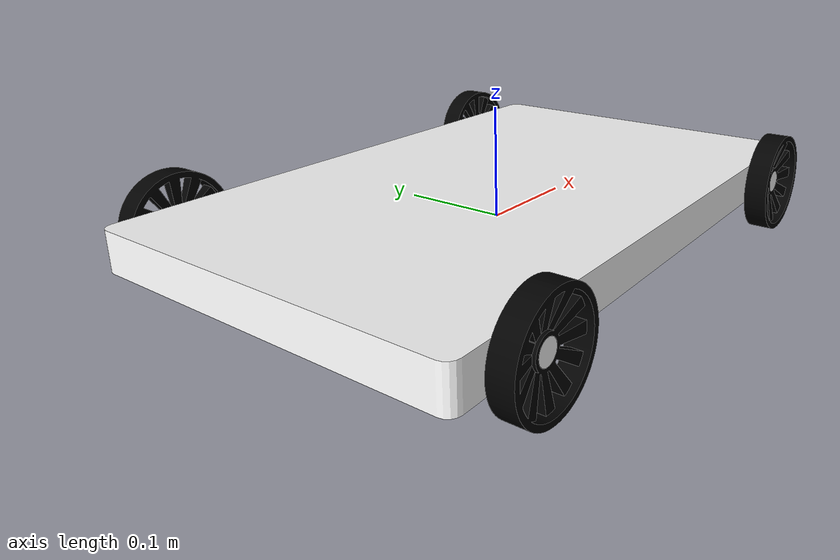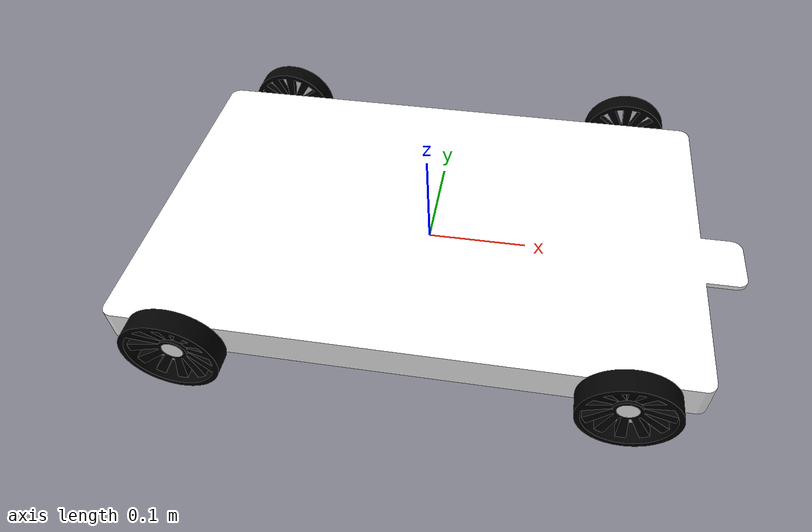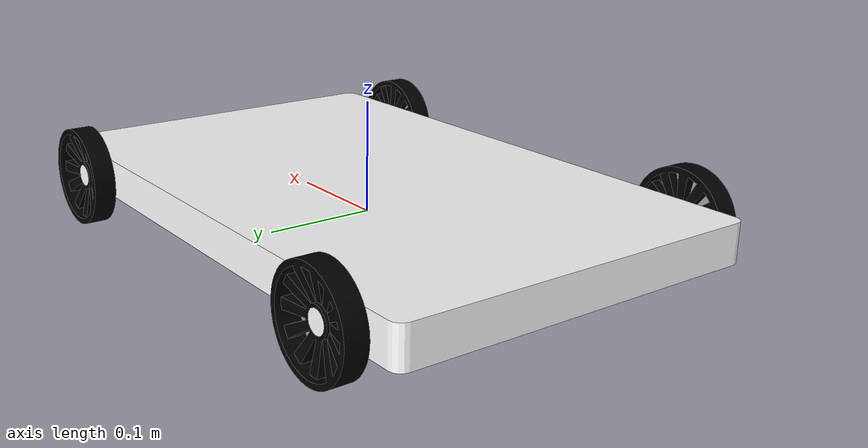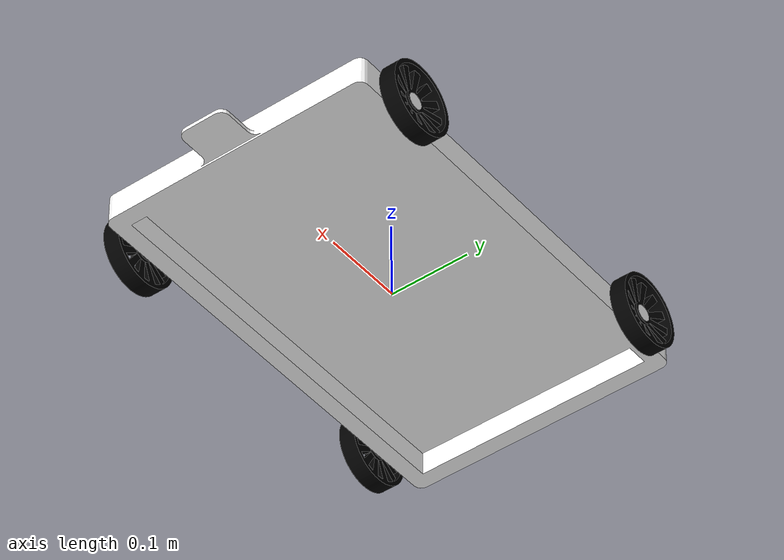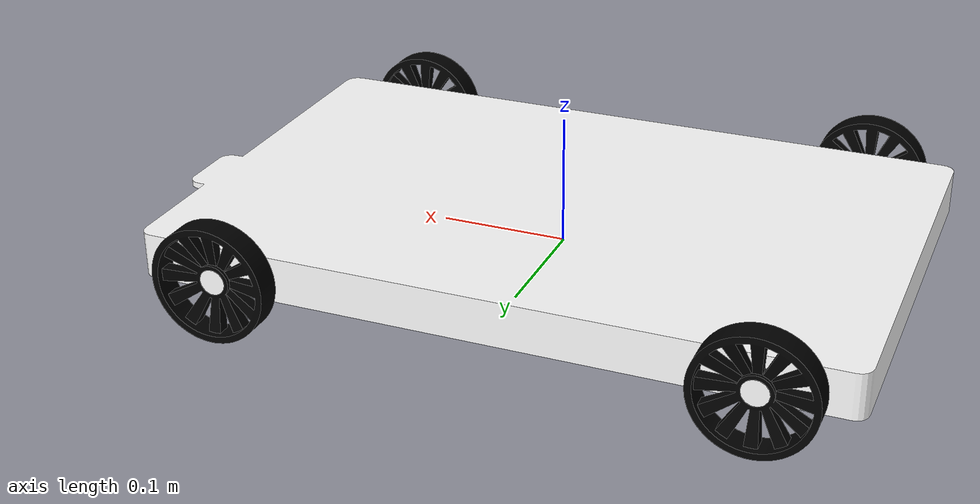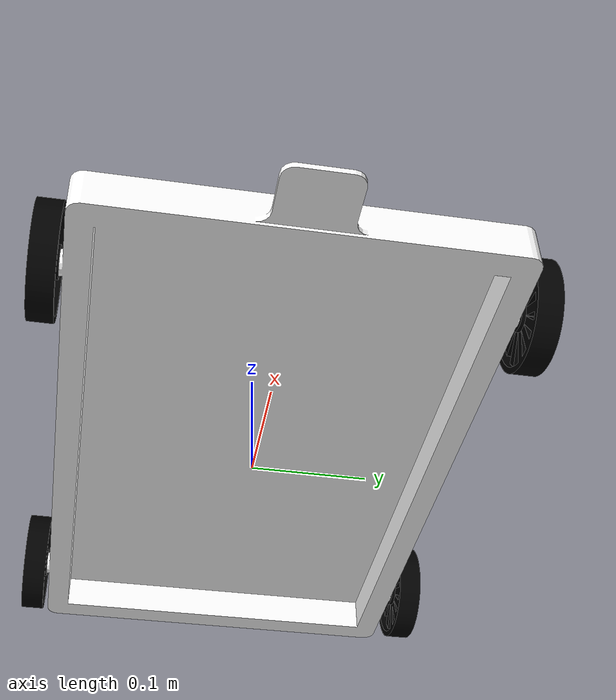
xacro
<?xml version="1.0"?>
<robot xmlns:xacro="http://www.ros.org/wiki/xacro">

    <material name="black">
        <color rgba="0 0 0 1"/>
    </material>

    <material name="orange">
        <color rgba="1 0.3 0.1 1"/>
    </material>

    <material name="white">
        <color rgba="1 1 1 1"/>
    </material>

    <material name="blue">
        <color rgba="0.2 0.2 1 1"/>
    </material>

    <!-- Base link -->
    <link name="ground">
    </link>

    <joint name="chassis_joint" type="fixed">
        <parent link="ground"/>
        <child link="base_link"/>
        <origin xyz="0.0 0 0" rpy="0 0 0"/>
    </joint>

    <!--Chassis link-->
    <link name="base_link">
        <inertial>
            <origin xyz="0.0022562994604977526 -3.718208202509074e-17 0.02313298338740699" rpy="0 0 0"/>
            <mass value="15.361234272141461"/>
            <inertia ixx="0.226855" iyy="0.506045" izz="0.729278" ixy="-0.0" iyz="-0.0" ixz="0.000611"/>
        </inertial>
        <visual>
            <origin xyz="0 0 0" rpy="0 0 0"/>
            <geometry>
                <mesh filename="file://$(find four_wheel_robot)/meshes/base_link.stl" scale="0.001 0.001 0.001"/>
            </geometry>
            <material name="white"/>
        </visual>
        <collision>
            <origin xyz="0 0 0" rpy="0 0 0"/>
            <geometry>
                <mesh filename="file://$(find four_wheel_robot)/meshes/base_link.stl" scale="0.001 0.001 0.001"/>
            </geometry>
        </collision>
    </link>
    <gazebo reference="chassis">
        <material>Gazebo/White</material>
        <self_collide>true</self_collide>
    </gazebo>

    <!-- Front right wheel -->
    <joint name="front_right_joint" type="continuous">
        <origin xyz="0.2 -0.185 0.015" rpy="0 0 0"/>
        <parent link="base_link"/>
        <child link="front_right"/>
        <axis xyz="0.0 1.0 0.0"/>
    </joint>

    <link name="front_right">
        <inertial>
            <origin xyz="5.551115123125783e-17 0.0029436383014599943 4.735795089416683e-16" rpy="0 0 0"/>
            <mass value="0.39497369552190503"/>
            <inertia ixx="0.000272" iyy="0.000525" izz="0.000272" ixy="0.0" iyz="0.0" ixz="-0.0"/>
        </inertial>
        <visual>
            <origin xyz="-0.2 0.185 -0.015" rpy="0 0 0"/>
            <geometry>
                <mesh filename="file://$(find four_wheel_robot)/meshes/front_right.stl" scale="0.001 0.001 0.001"/>
            </geometry>
            <material name="black"/>
        </visual>
        <collision>
            <origin xyz="-0.2 0.185 -0.015" rpy="0 0 0"/>
            <geometry>
                <mesh filename="file://$(find four_wheel_robot)/meshes/front_right.stl" scale="0.001 0.001 0.001"/>
            </geometry>
        </collision>
    </link>
    <gazebo reference="front_right">
        <material>Gazebo/Black</material>
        <self_collide>true</self_collide>
    </gazebo>

    <!-- Front left wheel -->
    <joint name="front_left_joint" type="continuous">
        <origin xyz="0.2 0.185 0.015" rpy="0 0 0"/>
        <parent link="base_link"/>
        <child link="front_left"/>
        <axis xyz="0.0 1.0 0.0"/>
    </joint>

    <link name="front_left">
        <inertial>
            <origin xyz="1.6653345369377348e-16 -0.0029436383014598833 4.666406150377611e-16" rpy="0 0 0"/>
            <mass value="0.3949736955219051"/>
            <inertia ixx="0.000272" iyy="0.000525" izz="0.000272" ixy="0.0" iyz="0.0" ixz="0.0"/>
        </inertial>
        <visual>
            <origin xyz="-0.2 -0.185 -0.015" rpy="0 0 0"/>
            <geometry>
                <mesh filename="file://$(find four_wheel_robot)/meshes/front_left.stl" scale="0.001 0.001 0.001"/>
            </geometry>
            <material name="black"/>
        </visual>
        <collision>
            <origin xyz="-0.2 -0.185 -0.015" rpy="0 0 0"/>
            <geometry>
                <mesh filename="file://$(find four_wheel_robot)/meshes/front_left.stl" scale="0.001 0.001 0.001"/>
            </geometry>
        </collision>
    </link>
    <gazebo reference="front_left">
        <material>Gazebo/Black</material>
        <self_collide>true</self_collide>
    </gazebo>

    <!--Rear Right-->
    <joint name="rear_right_joint" type="continuous">
        <origin xyz="-0.2 -0.185 0.015" rpy="0 0 0"/>
        <parent link="base_link"/>
        <child link="rear_right"/>
        <axis xyz="0.0 1.0 0.0"/>
    </joint>

    <link name="rear_right">
        <inertial>
            <origin xyz="-5.551115123125783e-17 0.0029436383014599943 -6.938893903907228e-18" rpy="0 0 0"/>
            <mass value="0.3949736955219051"/>
            <inertia ixx="0.000272" iyy="0.000525" izz="0.000272" ixy="0.0" iyz="0.0" ixz="0.0"/>
        </inertial>
        <visual>
            <origin xyz="0.2 0.185 -0.015" rpy="0 0 0"/>
            <geometry>
            <mesh filename="file://$(find four_wheel_robot)/meshes/rear_right.stl" scale="0.001 0.001 0.001"/>
            </geometry>
            <material name="black"/>
        </visual>
        <collision>
            <origin xyz="0.2 0.185 -0.015" rpy="0 0 0"/>
            <geometry>
            <mesh filename="file://$(find four_wheel_robot)/meshes/rear_right.stl" scale="0.001 0.001 0.001"/>
            </geometry>
        </collision>
    </link>

    <gazebo reference="rear_right">
        <material>Gazebo/Black</material>
        <self_collide>true</self_collide>
    </gazebo>

    <!--Rear Left-->
    <joint name="rear_left_joint" type="continuous">
        <origin xyz="-0.2 0.185 0.015" rpy="0 0 0"/>
        <parent link="base_link"/>
        <child link="rear_left"/>
        <axis xyz="0.0 1.0 0.0"/>
    </joint>

    <link name="rear_left">
        <inertial>
            <origin xyz="-5.551115123125783e-17 -0.0029436383014599943 -2.6020852139652106e-17" rpy="0 0 0"/>
            <mass value="0.39497369552190503"/>
            <inertia ixx="0.000272" iyy="0.000525" izz="0.000272" ixy="0.0" iyz="0.0" ixz="-0.0"/>
        </inertial>
        <visual>
            <origin xyz="0.2 -0.185 -0.015" rpy="0 0 0"/>
            <geometry>
            <mesh filename="file://$(find four_wheel_robot)/meshes/rear_left.stl" scale="0.001 0.001 0.001"/>
            </geometry>
            <material name="black"/>
        </visual>
        <collision>
            <origin xyz="0.2 -0.185 -0.015" rpy="0 0 0"/>
            <geometry>
            <mesh filename="file://$(find four_wheel_robot)/meshes/rear_left.stl" scale="0.001 0.001 0.001"/>
            </geometry>
        </collision>
    </link>
    <gazebo reference="rear_left">
        <material>Gazebo/Black</material>
        <self_collide>true</self_collide>
    </gazebo>

</robot>
